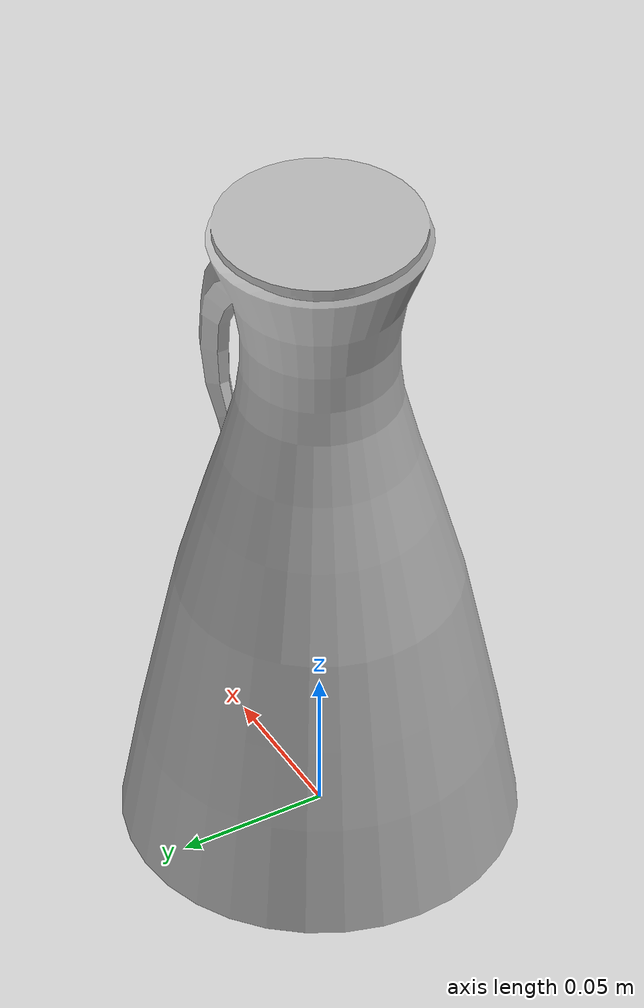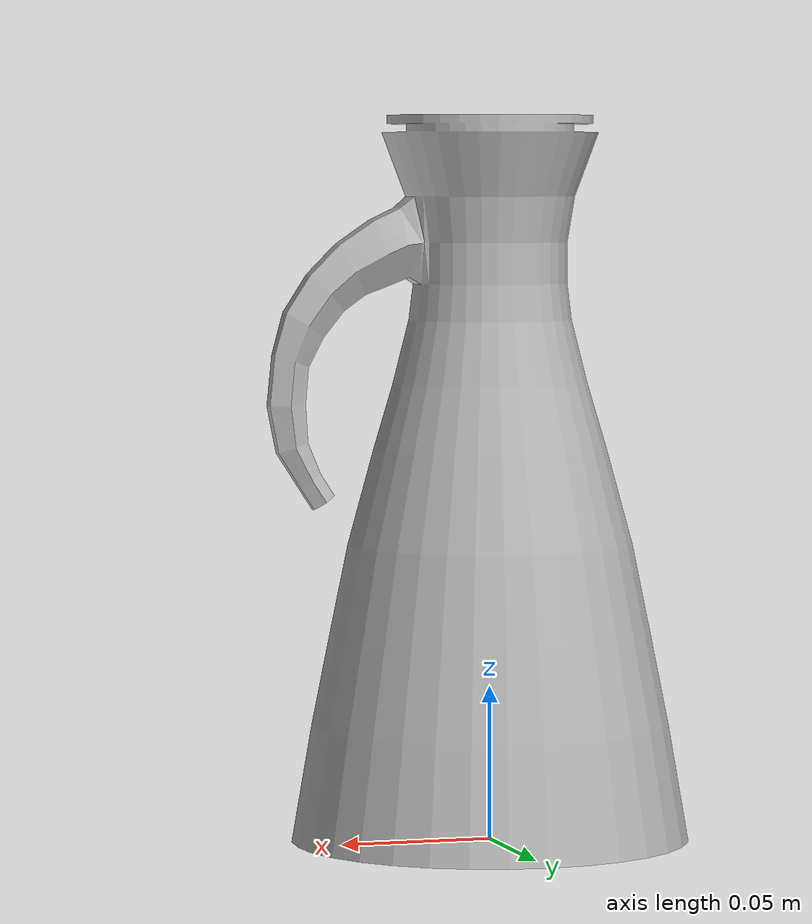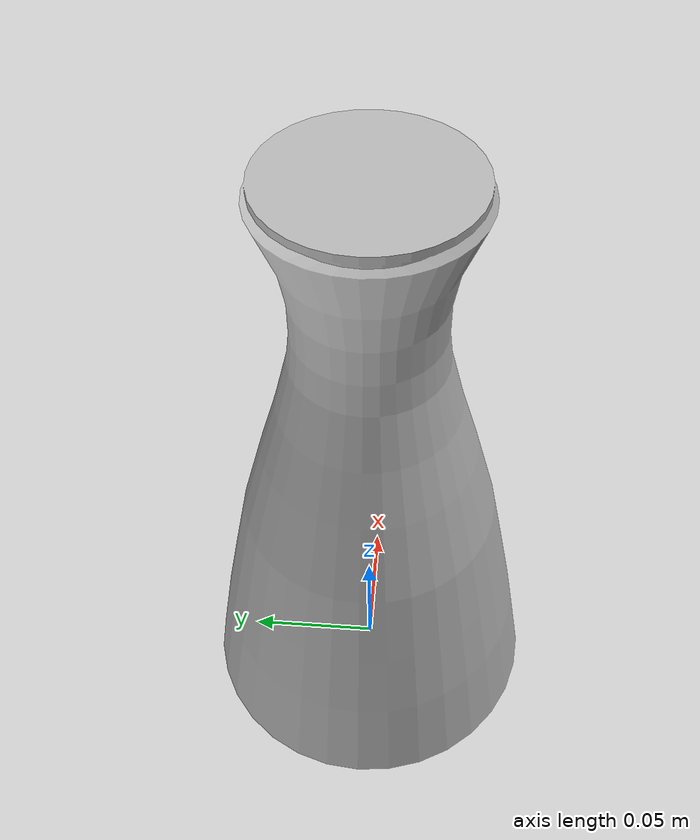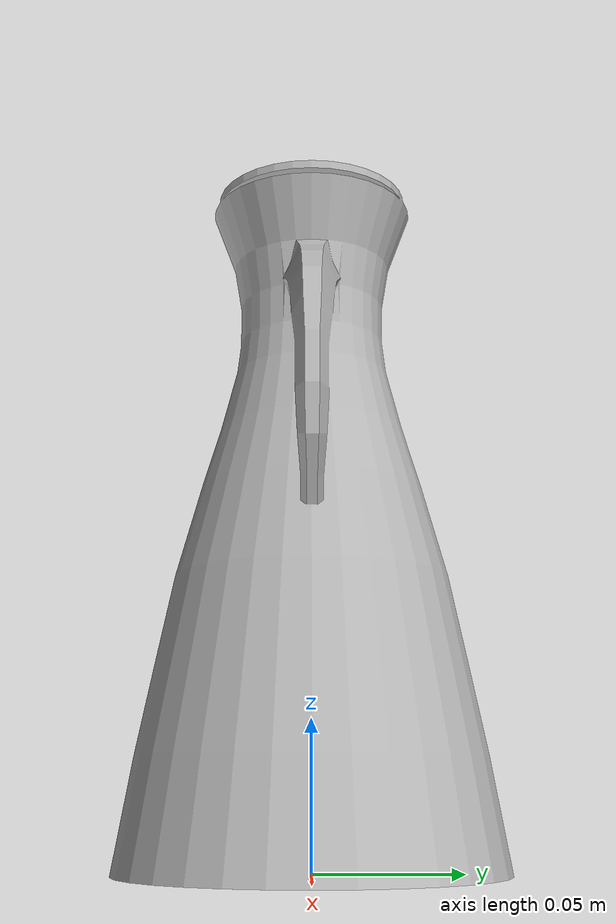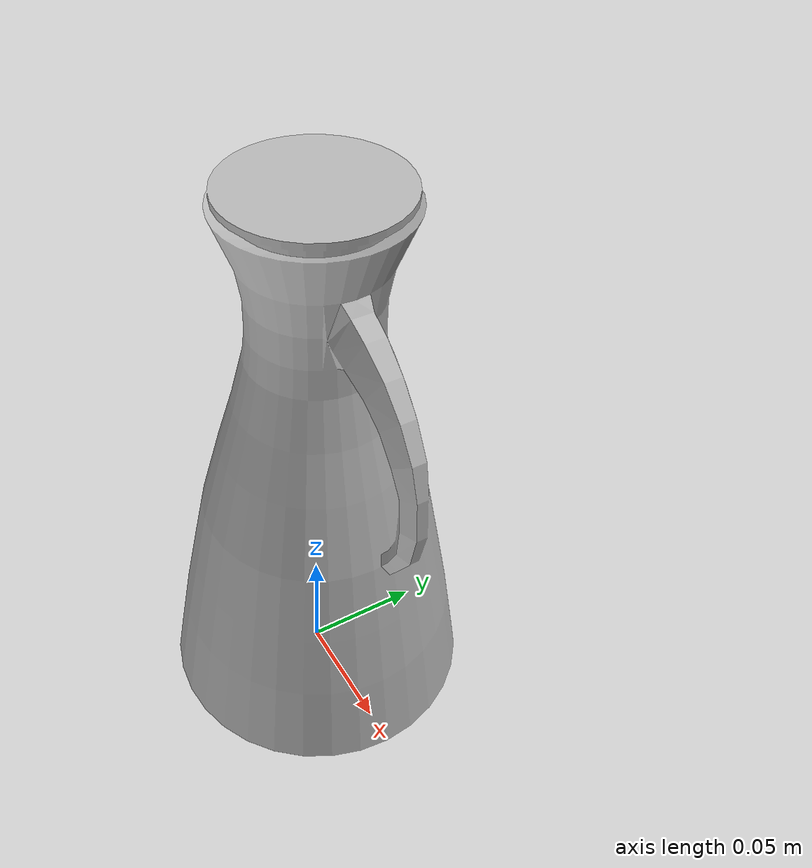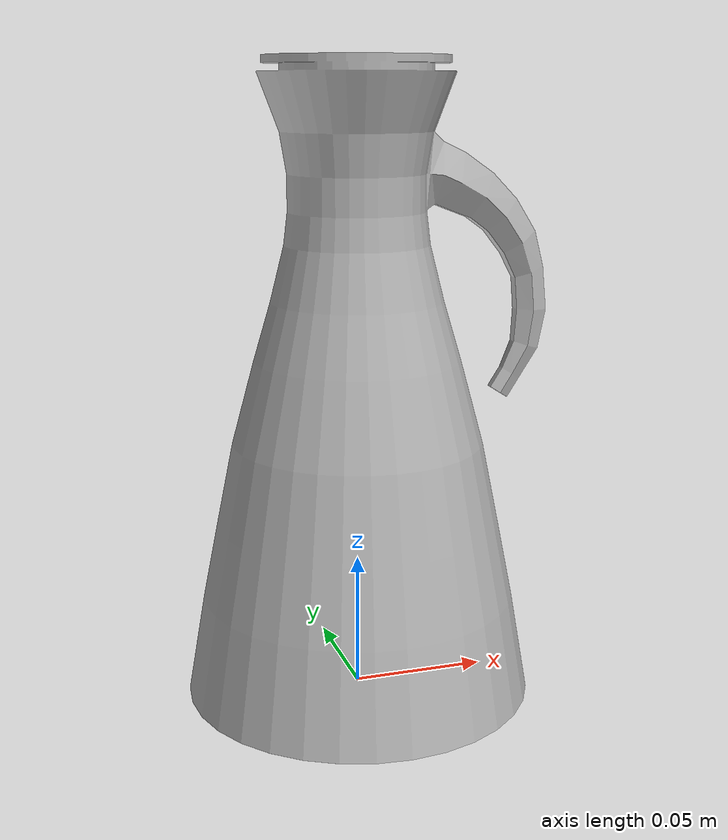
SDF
<?xml version='1.0'?>
<sdf version='1.7'>
  <model name='coffecan'>
    <link name='link_0'>
      <inertial>
        <mass>1.424</mass>
        <inertia>
           <ixx>0.006368833984400001</ixx>
           <ixy>1.5e-12</ixy>
           <ixz>-6.48260803e-05</ixz>
           <iyy>0.0064073300781</iyy>
           <iyz>-3.742e-10</iyz>
           <izz>0.0018547197266</izz>
        </inertia>
        <pose>0.000513 0 0.080213 0 -0 0</pose>
      </inertial>
      <pose>0 0 0 0 -0 0</pose>
      <gravity>1</gravity>
      <self_collide>0</self_collide>
      <kinematic>0</kinematic>
      <enable_wind>0</enable_wind>
      <visual name='visual'>
        <pose>0 0 0 0 -0 0</pose>
        <geometry>
          <mesh>
            <uri>model://coffecan/coffecan.dae</uri>
            <scale>1 1 1</scale>
          </mesh>
        </geometry>
        <transparency>0</transparency>
        <cast_shadows>1</cast_shadows>
      </visual>
      <collision name='collision'>
        <laser_retro>0</laser_retro>
        <max_contacts>10</max_contacts>
        <pose>0 0 0 0 -0 0</pose>
        <geometry>
          <mesh>
            <uri>model://coffecan/coffecan.dae</uri>
            <scale>1 1 1</scale>
          </mesh>
        </geometry>
        <surface>
          <friction>
            <ode>
              <mu>1.35</mu>
              <mu2>1</mu2>
              <fdir1>0 0 0</fdir1>
              <slip1>0</slip1>
              <slip2>0</slip2>
            </ode>
            <torsional>
              <coefficient>1</coefficient>
              <patch_radius>0</patch_radius>
              <surface_radius>0</surface_radius>
              <use_patch_radius>1</use_patch_radius>
              <ode>
                <slip>0</slip>
              </ode>
            </torsional>
          </friction>
          <bounce>
            <restitution_coefficient>0</restitution_coefficient>
            <threshold>1e+06</threshold>
          </bounce>
          <contact>
            <collide_without_contact>0</collide_without_contact>
            <collide_without_contact_bitmask>1</collide_without_contact_bitmask>
            <collide_bitmask>1</collide_bitmask>
            <ode>
              <soft_cfm>0</soft_cfm>
              <soft_erp>0.2</soft_erp>
              <kp>1e+13</kp>
              <kd>1</kd>
              <max_vel>0.01</max_vel>
              <min_depth>0</min_depth>
            </ode>
            <bullet>
              <split_impulse>1</split_impulse>
              <split_impulse_penetration_threshold>-0.01</split_impulse_penetration_threshold>
              <soft_cfm>0</soft_cfm>
              <soft_erp>0.2</soft_erp>
              <kp>1e+13</kp>
              <kd>1</kd>
            </bullet>
          </contact>
        </surface>
      </collision>
    </link>
    <static>0</static>
    <allow_auto_disable>1</allow_auto_disable>
  </model>
</sdf>
